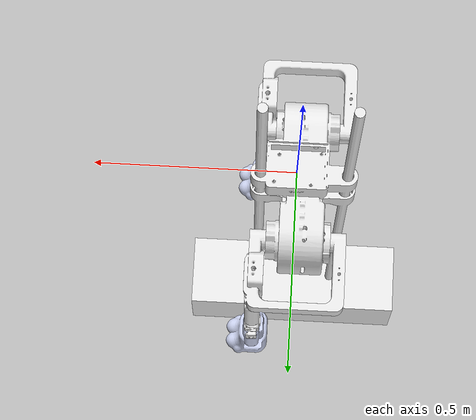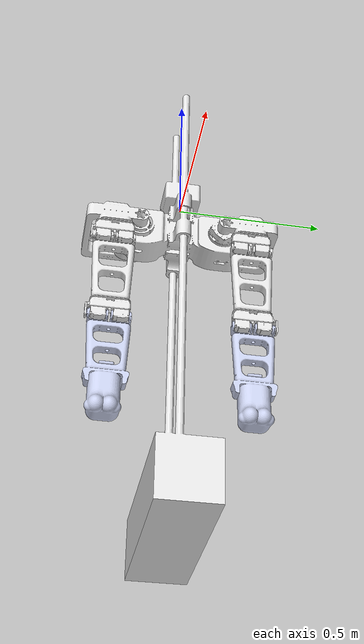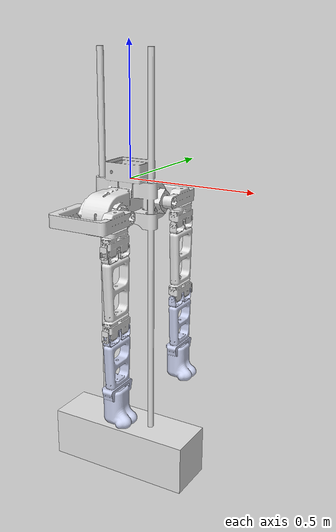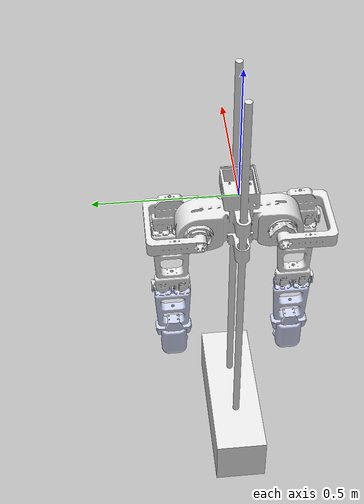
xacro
<?xml version="1.0"?>
<robot name="robot_completo" xmlns:xacro="http://www.ros.org/wiki/xacro">
  <link name="world" />
  <joint name="world_to_base" type="fixed">
    <parent link="world" />
    <child link="Base_link" />
    <origin xyz="0 0 0" rpy="0 1.57079632679 -1.57079632679" />
  </joint>

  <xacro:include filename="$(find robot_description)/urdf/urdf_completo/Pata_Pacial2URDFV9.urdf" />
</robot>

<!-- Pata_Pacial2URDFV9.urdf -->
<robot
  name="Pata_Pacial2URDFV9">
  <link
    name="Base_link">
    <inertial>
      <origin
        xyz="0.89862 -0.018172 -0.0011122"
        rpy="0 0 0" />
      <mass
        value="30.384" />
      <inertia
        ixx="0.80864"
        ixy="4.6363E-05"
        ixz="-6.5615E-07"
        iyy="1.489"
        iyz="-2.8743E-05"
        izz="2.1249" />
    </inertial>
    <visual>
      <origin
        xyz="0 0 0"
        rpy="0 0 0" />
      <geometry>
        <mesh
          filename="package://robot_description/meshes/meshes_completo/Base_link.STL" />
      </geometry>
      <material
        name="">
        <color
          rgba="0.89412 0.89412 0.89412 1" />
      </material>
    </visual>
    <collision>
      <origin
        xyz="0 0 0"
        rpy="0 0 0" />
      <geometry>
        <mesh
          filename="package://robot_description/meshes/meshes_completo/Base_link.STL" />
      </geometry>
    </collision>
  </link>
  <link
    name="Right_Hip_Roll_Link">
    <inertial>
      <origin
        xyz="0.094847 0.018557 -0.051255"
        rpy="0 0 0" />
      <mass
        value="1.1692" />
      <inertia
        ixx="0.0068896"
        ixy="-2.4855E-07"
        ixz="-1.8745E-08"
        iyy="0.0098103"
        iyz="-1.5926E-05"
        izz="0.0035982" />
    </inertial>
    <visual>
      <origin
        xyz="0 0 0"
        rpy="0 0 0" />
      <geometry>
        <mesh
          filename="package://robot_description/meshes/meshes_completo/Right_Hip_Roll_Link.STL" />
      </geometry>
      <material
        name="">
        <color
          rgba="0.89412 0.89412 0.89412 1" />
      </material>
    </visual>
    <collision>
      <origin
        xyz="0 0 0"
        rpy="0 0 0" />
      <geometry>
        <mesh
          filename="package://robot_description/meshes/meshes_completo/Right_Hip_Roll_Link.STL" />
      </geometry>
    </collision>
  </link>
  <joint
    name="Right_Hip_Roll_Joint"
    type="revolute">
    <origin
      xyz="0.10907 0.065472 0.14406"
      rpy="4.7124 -1.5708 0" />
    <parent
      link="Base_link" />
    <child
      link="Right_Hip_Roll_Link" />
    <axis
      xyz="0 0 -1" />
    <limit
      lower="0"
      upper="1.5708"
      effort="100"
      velocity="100" />
  </joint>
  <link
    name="Right_Hip_Pitch_Link">
    <inertial>
      <origin
        xyz="-0.00038449 -0.18817 -0.072706"
        rpy="0 0 0" />
      <mass
        value="0.82986" />
      <inertia
        ixx="0.0038103"
        ixy="3.0322E-06"
        ixz="-2.1802E-08"
        iyy="0.0013066"
        iyz="1.814E-07"
        izz="0.0026907" />
    </inertial>
    <visual>
      <origin
        xyz="0 0 0"
        rpy="0 0 0" />
      <geometry>
        <mesh
          filename="package://robot_description/meshes/meshes_completo/Right_Hip_Pitch_Link.STL" />
      </geometry>
      <material
        name="">
        <color
          rgba="0.89412 0.89412 0.89412 1" />
      </material>
    </visual>
    <collision>
      <origin
        xyz="0 0 0"
        rpy="0 0 0" />
      <geometry>
        <mesh
          filename="package://robot_description/meshes/meshes_completo/Right_Hip_Pitch_Link.STL" />
      </geometry>
    </collision>
  </link>
  <joint
    name="Right_Hip_Pitch_Joint"
    type="revolute">
    <origin
      xyz="0.15823 0.097319 0.01615"
      rpy="3.1416 -1.5708 0" />
    <parent
      link="Right_Hip_Roll_Link" />
    <child
      link="Right_Hip_Pitch_Link" />
    <axis
      xyz="0 0 1" />
    <limit
      lower="-1.5708"
      upper="1.5708"
      effort="100"
      velocity="100" />
  </joint>
  <link
    name="Right_Knee_Link">
    <inertial>
      <origin
        xyz="0.0032936 -0.23235 -0.070243"
        rpy="0 0 0" />
      <mass
        value="1.3221" />
      <inertia
        ixx="0.0042399"
        ixy="0.00023663"
        ixz="-2.5939E-05"
        iyy="0.0024555"
        iyz="1.9266E-05"
        izz="0.0032113" />
    </inertial>
    <visual>
      <origin
        xyz="0 0 0"
        rpy="0 0 0" />
      <geometry>
        <mesh
          filename="package://robot_description/meshes/meshes_completo/Right_Knee_Link.STL" />
      </geometry>
      <material
        name="">
        <color
          rgba="0.79216 0.81961 0.92941 1" />
      </material>
    </visual>
    <collision>
      <origin
        xyz="0 0 0"
        rpy="0 0 0" />
      <geometry>
        <mesh
          filename="package://robot_description/meshes/meshes_completo/Right_Knee_Link.STL" />
      </geometry>
    </collision>
  </link>
  <joint
    name="Right_Knee_Joint"
    type="revolute">
    <origin
      xyz="0 -0.31324 -0.0018918"
      rpy="0 0 0" />
    <parent
      link="Right_Hip_Pitch_Link" />
    <child
      link="Right_Knee_Link" />
    <axis
      xyz="0 0 -1" />
    <limit
      lower="-1.5708"
      upper="1.5708"
      effort="100"
      velocity="100" />
  </joint>
  <link
    name="Left_Hip_Roll_Link">
    <inertial>
      <origin
        xyz="0.89862 -0.018172 -0.0011122"
        rpy="0 0 0" />
      <mass
        value="30.384" />
      <inertia
        ixx="0.80864"
        ixy="4.6363E-05"
        ixz="-6.5615E-07"
        iyy="1.489"
        iyz="-2.8743E-05"
        izz="2.1249" />
    </inertial>
    <visual>
      <origin
        xyz="0 0 0"
        rpy="0 0 0" />
      <geometry>
        <mesh
          filename="package://robot_description/meshes/meshes_completo/Left_Hip_Roll_Link.STL" />
      </geometry>
      <material
        name="">
        <color
          rgba="0.89412 0.89412 0.89412 1" />
      </material>
    </visual>
    <collision>
      <origin
        xyz="0 0 0"
        rpy="0 0 0" />
      <geometry>
        <mesh
          filename="package://robot_description/meshes/meshes_completo/Left_Hip_Roll_Link.STL" />
      </geometry>
    </collision>
  </link>
  <joint
    name="Left_Hip_Roll_Joint"
    type="revolute">
    <origin
      xyz="0.10909 0.078873 -0.14579"
      rpy="4.7124 -1.5708 0" />
    <parent
      link="Base_link" />
    <child
      link="Left_Hip_Roll_Link" />
    <axis
      xyz="0 0 1" />
    <limit
      lower="0"
      upper="1.5708"
      effort="100"
      velocity="100" />
  </joint>
  <link
    name="Left_Hip_Pitch_Link">
    <inertial>
      <origin
        xyz="-0.00038625 0.18852 -0.071064"
        rpy="0 0 0" />
      <mass
        value="0.82827" />
      <inertia
        ixx="0.0038103"
        ixy="-3.0381E-06"
        ixz="-2.4021E-08"
        iyy="0.0013065"
        iyz="-1.8002E-07"
        izz="0.0026905" />
    </inertial>
    <visual>
      <origin
        xyz="0 0 0"
        rpy="0 0 0" />
      <geometry>
        <mesh
          filename="package://robot_description/meshes/meshes_completo/Left_Hip_Pitch_Link.STL" />
      </geometry>
      <material
        name="">
        <color
          rgba="0.89412 0.89412 0.89412 1" />
      </material>
    </visual>
    <collision>
      <origin
        xyz="0 0 0"
        rpy="0 0 0" />
      <geometry>
        <mesh
          filename="package://robot_description/meshes/meshes_completo/Left_Hip_Pitch_Link.STL" />
      </geometry>
    </collision>
  </link>
  <joint
    name="Left_Hip_Pitch_Joint"
    type="revolute">
    <origin
      xyz="-0.15623 0.097361 0.01615"
      rpy="0 -1.5708 0" />
    <parent
      link="Left_Hip_Roll_Link" />
    <child
      link="Left_Hip_Pitch_Link" />
    <axis
      xyz="0 0 -1" />
    <limit
      lower="-1.5708"
      upper="1.5708"
      effort="100"
      velocity="100" />
  </joint>
  <link
    name="Left_Knee_Link">
    <inertial>
      <origin
        xyz="0.0032886 0.23235 -0.072631"
        rpy="0 0 0" />
      <mass
        value="1.3221" />
      <inertia
        ixx="0.0042399"
        ixy="-0.00023663"
        ixz="2.5939E-05"
        iyy="0.0024555"
        iyz="1.9266E-05"
        izz="0.0032113" />
    </inertial>
    <visual>
      <origin
        xyz="0 0 0"
        rpy="0 0 0" />
      <geometry>
        <mesh
          filename="package://robot_description/meshes/meshes_completo/Left_Knee_Link.STL" />
      </geometry>
      <material
        name="">
        <color
          rgba="0.79216 0.81961 0.92941 1" />
      </material>
    </visual>
    <collision>
      <origin
        xyz="0 0 0"
        rpy="0 0 0" />
      <geometry>
        <mesh
          filename="package://robot_description/meshes/meshes_completo/Left_Knee_Link.STL" />
      </geometry>
    </collision>
  </link>
  <joint
    name="Left_Knee_Joint"
    type="revolute">
    <origin
      xyz="0 0.31324 -0.00012175"
      rpy="0 0 0" />
    <parent
      link="Left_Hip_Pitch_Link" />
    <child
      link="Left_Knee_Link" />
    <axis
      xyz="0 0 1" />
    <limit
      lower="-1.5708"
      upper="1.5708"
      effort="100"
      velocity="100" />
  </joint>
</robot>
